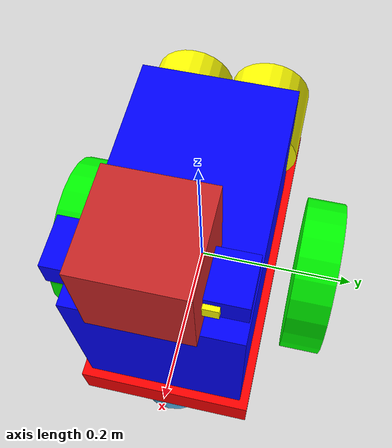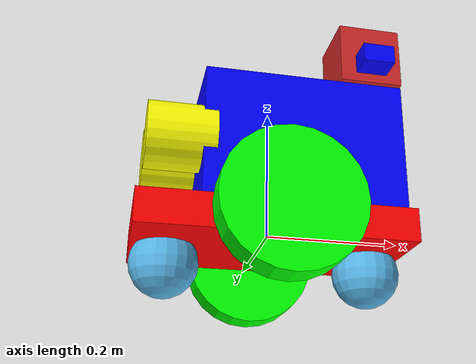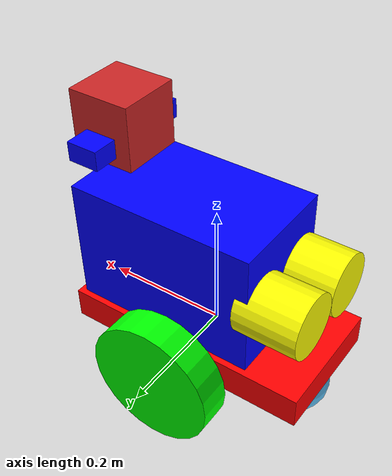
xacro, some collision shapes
<?xml version='1.0'?>

<robot name="my_bot" xmlns:xacro="http://www.ros.org/wiki/xacro">
  <xacro:include filename="$(find my_bot)/urdf/my_bot.gazebo" />

  <!-- chassis link footprint -->
  <link name="robot_footprint"></link>
  <joint name="robot_footprint_joint" type="fixed">
    <origin xyz="0 0 0" rpy="0 0 0" />
    <parent link="robot_footprint"/>
    <child link="chassis" />
  </joint>

  <!-- chassis link -->
  <link name='chassis'>
    <pose>0 0 0.15 0 0 0</pose>
    <inertial>
      <mass value="10.0"/>
      <origin xyz="0.0 0 0" rpy=" 0 0 0"/>
      <inertia
          ixx="0.1" ixy="0" ixz="0"
          iyy="0.1" iyz="0"
          izz="0.1"
      />
    </inertial>

    <collision name='chassis_collision'>
      <origin xyz="0 0 0" rpy=" 0 0 0"/>
      <geometry>
        <box size="0.4 0.2 0.05"/>
      </geometry>
    </collision>

    <visual name='chassis_visual'>
      <origin xyz="0 0 0" rpy=" 0 0 0"/>
      <geometry>
        <box size="0.4 0.2 0.05"/>
      </geometry>
      <material name="Red">
          <color rgba="1 0 0 3"/>
      </material>
    </visual>

    <collision name='back_caster_collision'>
      <origin xyz="-0.15 0 -0.05" rpy=" 0 0 0"/>
      <geometry>
        <sphere radius="0.0499"/>
      </geometry>
    </collision>

    <visual name='back_caster_visual'>
      <origin xyz="-0.15 0 -0.05" rpy=" 0 0 0"/>
      <geometry>
        <sphere radius="0.05"/>
      </geometry>
    </visual>

    <collision name='front_caster_collision'>
      <origin xyz="0.15 0 -0.05" rpy=" 0 0 0"/>
      <geometry>
        <sphere radius="0.0499"/>
      </geometry>
    </collision>

    <visual name='front_caster_visual'>
      <origin xyz="0.15 0 -0.05" rpy=" 0 0 0"/>
      <geometry>
        <sphere radius="0.05"/>
      </geometry>
    </visual>

  </link>

  <!-- body -->
  <link name="body">
    <pose>0 0 0 0 0 0</pose>
    <inertial>
      <mass value="3.0"/>
      <origin xyz="0 0 0" rpy=" 0 0 0"/>
      <inertia
          ixx="0.1" ixy="0" ixz="0"
          iyy="0.1" iyz="0"
          izz="0.1"
      />
    </inertial>

    <collision name='body_collision'>
      <origin xyz="0 0 0" rpy=" 0 0 0"/>
      <geometry>
        <box size="0.3 0.18 0.2"/>
      </geometry>
    </collision>

    <visual name='body_visual'>
      <origin xyz="0 0 0" rpy=" 0 0 0"/>
      <geometry>
        <box size="0.3 0.18 0.2"/>
      </geometry>
      <material name="blue">
          <color rgba="0 0 1 3"/>
      </material>
    </visual>
  </link>

  <joint type="fixed" name="body_joint">
    <origin xyz="0.04 0 0.125" rpy="0 0 0"/>
    <child link="body"/>
    <parent link="chassis"/>
  </joint>

  <!-- Two turbos -->
  <link name='left_turbo'>
    <inertial>
      <mass value="1.0"/>
      <origin xyz="0 0 0" rpy="0 0 0"/>
      <inertia
          ixx="0.1" ixy="0" ixz="0"
          iyy="0.1" iyz="0"
          izz="0.1"
      />
    </inertial>

    <collision name='left_turbo_collision'>
      <origin xyz="0 0 0" rpy="0 1.5707 0"/>
      <geometry>
        <cylinder radius="0.05" length="0.1"/>
      </geometry>
    </collision>

    <visual name='left_turbo_visual'>
      <origin xyz="0 0 0" rpy="0 1.5707 0"/>
      <geometry>
        <cylinder radius="0.05" length="0.1"/>
      </geometry>
      <material name="yellow">
          <color rgba="1 1 0 3"/>
      </material>
    </visual>
  </link>

  <joint type="fixed" name="left_turbo_joint">
    <origin xyz="-0.18 -0.05 0" rpy="0 0 0"/>
    <child link="left_turbo"/>
    <parent link="body"/>
  </joint>

  <link name='right_turbo'>
    <inertial>
      <mass value="1.0"/>
      <origin xyz="0 0 0" rpy="0 0 0"/>
      <inertia
          ixx="0.1" ixy="0" ixz="0"
          iyy="0.1" iyz="0"
          izz="0.1"
      />
    </inertial>

    <collision name='right_turbo_collision'>
      <origin xyz="0 0 0" rpy="0 1.5707 0"/>
      <geometry>
        <cylinder radius="0.05" length="0.1"/>
      </geometry>
    </collision>

    <visual name='right_turbo_visual'>
      <origin xyz="0 0 0" rpy="0 1.5707 0"/>
      <geometry>
        <cylinder radius="0.05" length="0.1"/>
      </geometry>
      <material name="yellow"/>
    </visual>
  </link>

  <joint type="fixed" name="right_turbo_joint">
    <origin xyz="-0.18 0.05 0" rpy="0 0 0"/>
    <child link="right_turbo"/>
    <parent link="body"/>
  </joint>

  <!-- Neck -->
  <link name="neck">
    <pose>0 0 0.06 0 0 0</pose>
    <inertial>
      <mass value="0.3"/>
      <origin xyz="0 0 0" rpy="0 0 0"/>
      <inertia
          ixx="0.1" ixy="0" ixz="0"
          iyy="0.1" iyz="0"
          izz="0.1"
      />
    </inertial>

    <collision name='neck_collision'>
      <origin xyz="0 0 0" rpy="0 0 0"/>
      <geometry>
        <cylinder radius="0.015" length="0.12"/>
      </geometry>
    </collision>

    <visual name='neck_visual'>
      <origin xyz="0 0 0" rpy=" 0 0 0"/>
      <geometry>
        <cylinder radius="0.015" length="0.12"/>
      </geometry>
      <material name="pink">
          <color rgba="0.94 0.62 0.75 3"/>
      </material>
    </visual>
  </link>

  <joint type="fixed" name="neck_joint">
    <origin xyz="0.12 0 0.1" rpy="0 0 0"/>
    <child link="neck"/>
    <parent link="body"/>
  </joint>

  <!-- camera_box -->
  <link name="camera_box">
    <pose>0 0 0.02 0 0 0</pose>
    <inertial>
      <mass value="0.3"/>
      <origin xyz="0 0 0" rpy=" 0 0 0"/>
      <inertia
          ixx="0.1" ixy="0" ixz="0"
          iyy="0.1" iyz="0"
          izz="0.1"
      />
    </inertial>
    <collision name='camera_box'>
      <origin xyz="0 0 0" rpy=" 0 0 0"/>
      <geometry>
       <box size="0.05 0.18 0.03"/>
      </geometry>
    </collision>

    <visual name='camera_box'>
      <origin xyz="0 0 0" rpy=" 0 0 0"/>
      <geometry>
       <box size="0.05 0.18 0.03"/>
      </geometry>
      <material name="black">
          <color rgba="0 0 1 1"/>
      </material>
    </visual>
  </link>

  <joint type="fixed" name="camera_box_joint">
    <origin xyz="0 0 0.06" rpy="0 0 0"/>
    <child link="camera_box"/>
    <parent link="neck"/>
  </joint>

  <!-- two wheels -->
  <link name='left_wheel'>
    <inertial>
      <mass value="3.0"/>
      <origin xyz="0 0 0" rpy="0 0 0"/>
      <inertia
          ixx="0.1" ixy="0" ixz="0"
          iyy="0.1" iyz="0"
          izz="0.1"
      />
    </inertial>

    <collision name='left_wheel_collision'>
      <origin xyz="0 0 0" rpy="0 1.5707 1.5707"/>
      <geometry>
        <cylinder radius="0.1" length="0.05"/>
      </geometry>
    </collision>

    <visual name='left_wheel_visual'>
      <origin xyz="0 0 0" rpy="0 1.5707 1.5707"/>
      <geometry>
        <cylinder radius="0.1" length="0.05"/>
      </geometry>
      <material name="green">
          <color rgba="0 1 0 3"/>
      </material>
    </visual>

  </link>

  <joint type="continuous" name="left_wheel_hinge">
    <origin xyz="0 0.15 0" rpy="0 0 0"/>
    <child link="left_wheel"/>
    <parent link="chassis"/>
    <axis xyz="0 1 0" rpy="0 0 0"/>
    <limit effort="10000" velocity="1000"/>
    <dynamics damping="1.0" friction="1.0"/>
  </joint>

  <link name='right_wheel'>
    <inertial>
      <mass value="3.0"/>
      <origin xyz="0 0 0" rpy="0 0 0"/>
      <inertia
          ixx="0.1" ixy="0" ixz="0"
          iyy="0.1" iyz="0"
          izz="0.1"
      />
    </inertial>

    <collision name='right_wheel_collision'>
      <origin xyz="0 0 0" rpy="0 1.5707 1.5707"/>
      <geometry>
        <cylinder radius="0.1" length="0.05"/>
      </geometry>
    </collision>

    <visual name='right_wheel_visual'>
      <origin xyz="0 0 0" rpy="0 1.5707 1.5707"/>
      <geometry>
        <cylinder radius="0.1" length="0.05"/>
      </geometry>
      <material name="green"/>
    </visual>

  </link>

  <joint type="continuous" name="right_wheel_hinge">
    <origin xyz="0 -0.15 0" rpy="0 0 0"/>
    <child link="right_wheel"/>
    <parent link="chassis"/>
    <axis xyz="0 1 0" rpy="0 0 0"/>
    <limit effort="10000" velocity="1000"/>
    <dynamics damping="1.0" friction="1.0"/>
  </joint>

  <!-- camera -->
  <link name='camera'>
    <inertial>
      <mass value="0.1"/>
      <inertia
          ixx="1e-6" ixy="0" ixz="0"
          iyy="1e-6" iyz="0"
          izz="1e-6"
      />
    </inertial>

    <collision name='camera_collision'>
      <origin xyz="0 0 0" rpy="0 0 0"/>
      <geometry>
        <box size="0.01 0.13 0.015"/>
      </geometry>
    </collision>

    <visual name='camera_visual'>
      <origin xyz="0 0 0" rpy="0 0 0"/>
      <geometry>
        <box size="0.01 0.13 0.015"/>
      </geometry>
      <material name="yellow"/>
    </visual>
  </link>

  <joint type="fixed" name="camera_joint">
    <origin xyz="0.025 0 0" rpy="0 0 0"/>
    <child link="camera"/>
    <parent link="camera_box"/>
  </joint>

  <!-- hokuyo -->
  <link name='hokuyo'>
    <inertial>
      <mass value="0.1"/>
      <inertia
          ixx="1e-6" ixy="0" ixz="0"
          iyy="1e-6" iyz="0"
          izz="1e-6"
      />
    </inertial>

    <collision name='hokuyo_collision'>
      <origin xyz="0.0 0 0" rpy="0 0 0"/>
      <geometry>
        <box size="0.1 0.1 0.1"/>
      </geometry>
    </collision>

    <visual name='hokuyo_visual'>
      <origin xyz="0.0 0 0" rpy="0 0 0"/>
      <geometry>
        <mesh filename="package://my_bot/meshes/hokuyo.dae"/>
      </geometry>
      <material name="red"/>
    </visual>
  </link>

  <joint type="fixed" name="hokuyo_joint">
    <origin xyz="0 0 0.02" rpy="0 0 0"/>
    <child link="hokuyo"/>
    <parent link="camera_box"/>
  </joint>

</robot>
